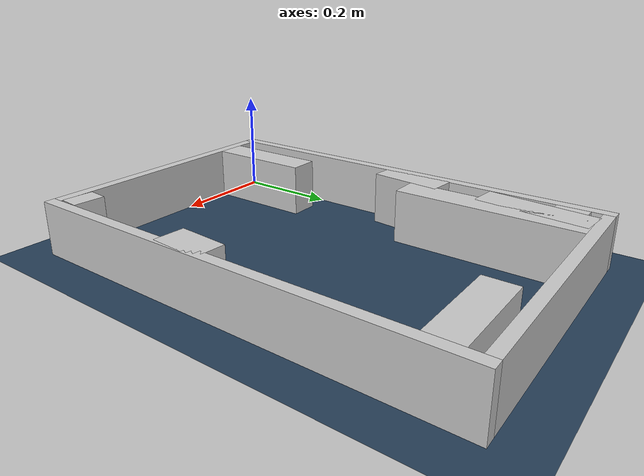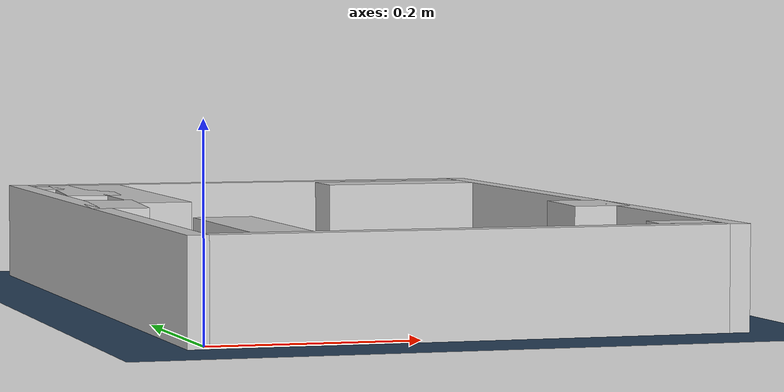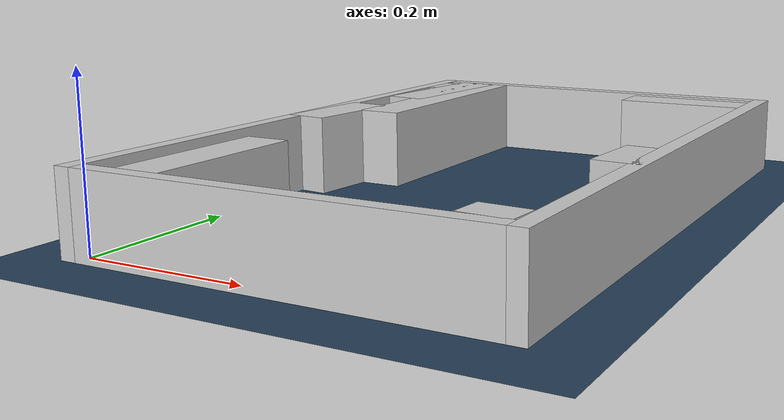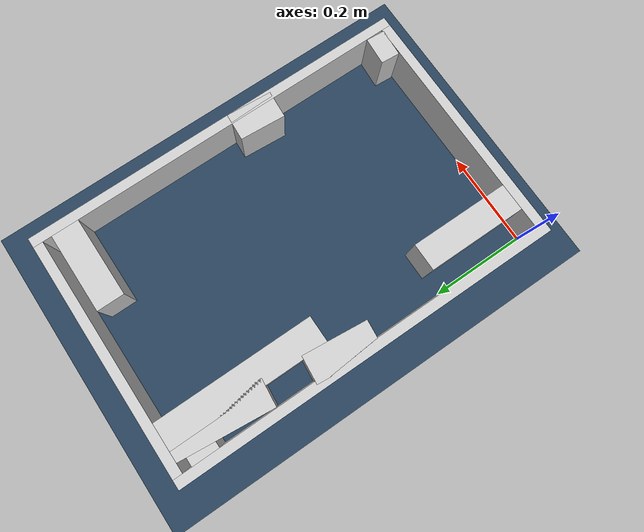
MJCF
<?xml version="1.0" ?>
<mujoco model="generated_real_template">
  <compiler angle="degree"/>
  <option timestep="0.002" integrator="implicitfast" iterations="100" cone="elliptic"/>
  <default>
    <geom density="1"/>
  </default>
  <asset>
    <texture builtin="gradient" height="3072" rgb1="0.3 0.5 0.7" rgb2="0 0 0" type="skybox" width="512"/>
    <texture builtin="checker" height="300" mark="edge" markrgb="0.8 0.8 0.8" name="groundplane" rgb1="0.2 0.3 0.4" rgb2="0.1 0.2 0.3" type="2d" width="300"/>
    <material name="groundplane" reflectance="0.2" texrepeat="5 5" texture="groundplane" texuniform="true"/>
  </asset>
  <worldbody>
    <light dir="0 0 -1" directional="true" pos="0 0 1.5"/>
    <geom name="floor" type="plane" condim="4" friction="0.5 0.005 0.001" material="groundplane" size="0 0 0.05"/>
    <body name="walls">
      <geom name="wall_boundary_left" type="box" condim="4" friction="1.0 0.005 0.0001" rgba="0.8 0.8 0.8 1" pos="-0.010000 0.387500 0.050000" euler="0 0 0.000000" size="0.010000 0.407500 0.050000"/>
      <geom name="wall_boundary_right" type="box" condim="4" friction="1.0 0.005 0.0001" rgba="0.8 0.8 0.8 1" pos="0.500000 0.387500 0.050000" euler="0 0 0.000000" size="0.010000 0.407500 0.050000"/>
      <geom name="wall_boundary_bottom" type="box" condim="4" friction="1.0 0.005 0.0001" rgba="0.8 0.8 0.8 1" pos="0.245000 -0.010000 0.050000" euler="0 0 0.000000" size="0.245000 0.010000 0.050000"/>
      <geom name="wall_boundary_top" type="box" condim="4" friction="1.0 0.005 0.0001" rgba="0.8 0.8 0.8 1" pos="0.245000 0.785000 0.050000" euler="0 0 0.000000" size="0.245000 0.010000 0.050000"/>
      <geom name="wall_inner_1_1" type="box" condim="4" friction="1.0 0.005 0.0001" rgba="0.8 0.8 0.8 1" pos="0.071116 0.103626 0.050000" euler="0 0 90.000000" size="0.103626 0.028500 0.050000"/>
      <geom name="wall_inner_1_2" type="box" condim="4" friction="1.0 0.005 0.0001" rgba="0.8 0.8 0.8 1" pos="0.071116 0.608390 0.050000" euler="0 0 90.000000" size="0.166610 0.028500 0.050000"/>
      <geom name="wall_inner_2_1" type="box" condim="4" friction="1.0 0.005 0.0001" rgba="0.8 0.8 0.8 1" pos="0.459373 0.019674 0.050000" euler="0 0 86.243590" size="0.019716 0.028500 0.050000"/>
      <geom name="wall_inner_2_2" type="box" condim="4" friction="1.0 0.005 0.0001" rgba="0.8 0.8 0.8 1" pos="0.478427 0.309876 0.050000" euler="0 0 86.243590" size="0.047830 0.028500 0.050000"/>
      <geom name="wall_inner_3_1" type="box" condim="4" friction="1.0 0.005 0.0001" rgba="0.8 0.8 0.8 1" pos="0.039128 0.676298 0.050000" euler="0 0 -95.605952" size="0.099177 0.028500 0.050000"/>
      <geom name="wall_inner_3_2" type="box" condim="4" friction="1.0 0.005 0.0001" rgba="0.8 0.8 0.8 1" pos="0.014962 0.430102 0.050000" euler="0 0 -95.605952" size="0.067538 0.028500 0.050000"/>
      <geom name="wall_inner_4_1" type="box" condim="4" friction="1.0 0.005 0.0001" rgba="0.8 0.8 0.8 1" pos="0.018280 0.727985 0.050000" euler="0 0 0.000000" size="0.018280 0.028500 0.050000"/>
      <geom name="wall_inner_4_2" type="box" condim="4" friction="1.0 0.005 0.0001" rgba="0.8 0.8 0.8 1" pos="0.406067 0.727985 0.050000" euler="0 0 0.000000" size="0.083933 0.028500 0.050000"/>
    </body>
  </worldbody>
</mujoco>
